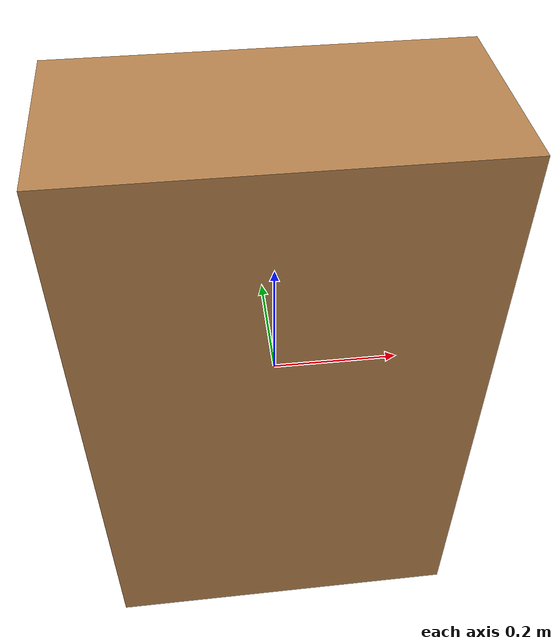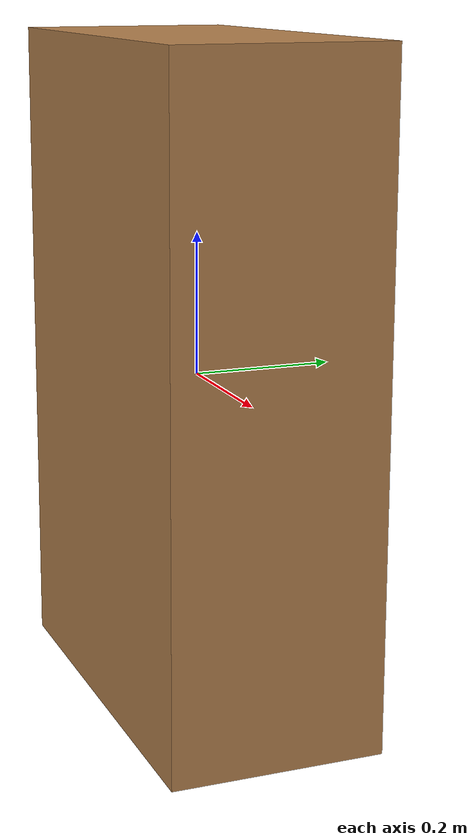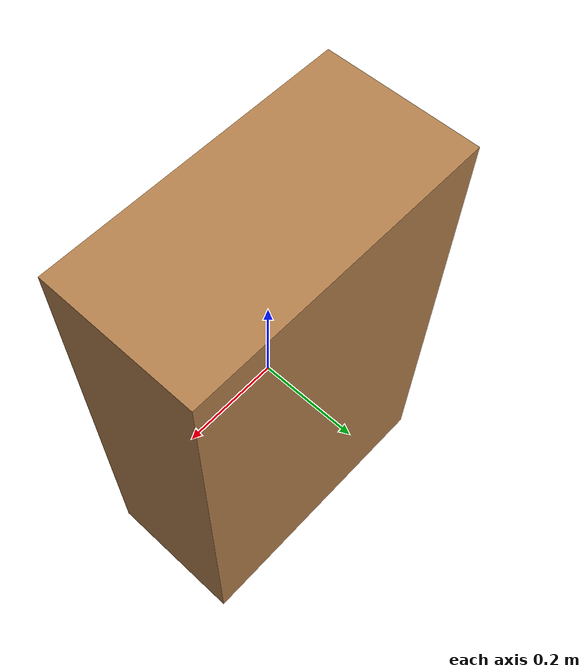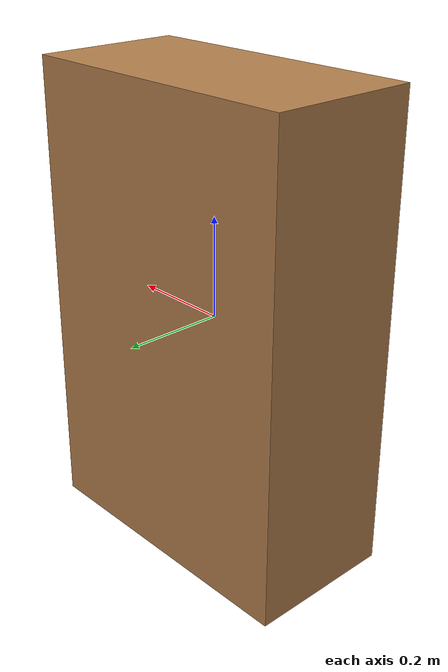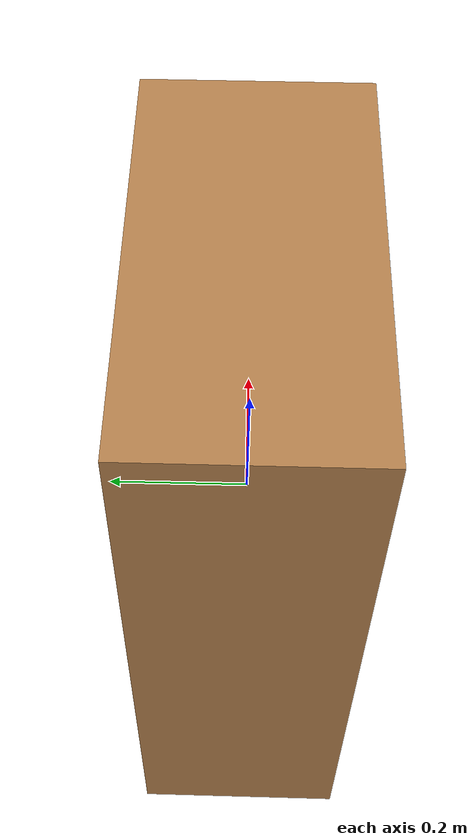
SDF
<?xml version='1.0'?>
<sdf version='1.6'>
  <model name='desk'>
    <link name="link">
      <inertial>
        <mass>1.0</mass>
        <inertia>
          <ixx>0.08</ixx>       <!-- for a box: ixx = 0.083 * mass * (y*y + z*z) -->
          <ixy>0.0</ixy>         <!-- for a box: ixy = 0 -->
          <ixz>0.0</ixz>         <!-- for a box: ixz = 0 -->
          <iyy>0.103</iyy>       <!-- for a box: iyy = 0.083 * mass * (x*x + z*z) -->
          <iyz>0.0</iyz>         <!-- for a box: iyz = 0 -->
          <izz>0.037</izz>       <!-- for a box: izz = 0.083 * mass * (x*x + y*y) -->
        </inertia>
      </inertial>
      <collision name="collision">
        <geometry>
          <box>
            <size>0.6 0.3 0.938</size>
          </box>
        </geometry>
      </collision>
      <visual name="visual">
        <geometry>
          <box>
            <size>0.6 0.3 0.938</size>
          </box>
        </geometry>
	  <material>
	    <script>
	      <uri>file://media/materials/scripts/gazebo.material</uri>
	      <name>Gazebo/Wood</name>
	    </script>
	  </material>
       </visual>
    </link>
  </model>
</sdf>
